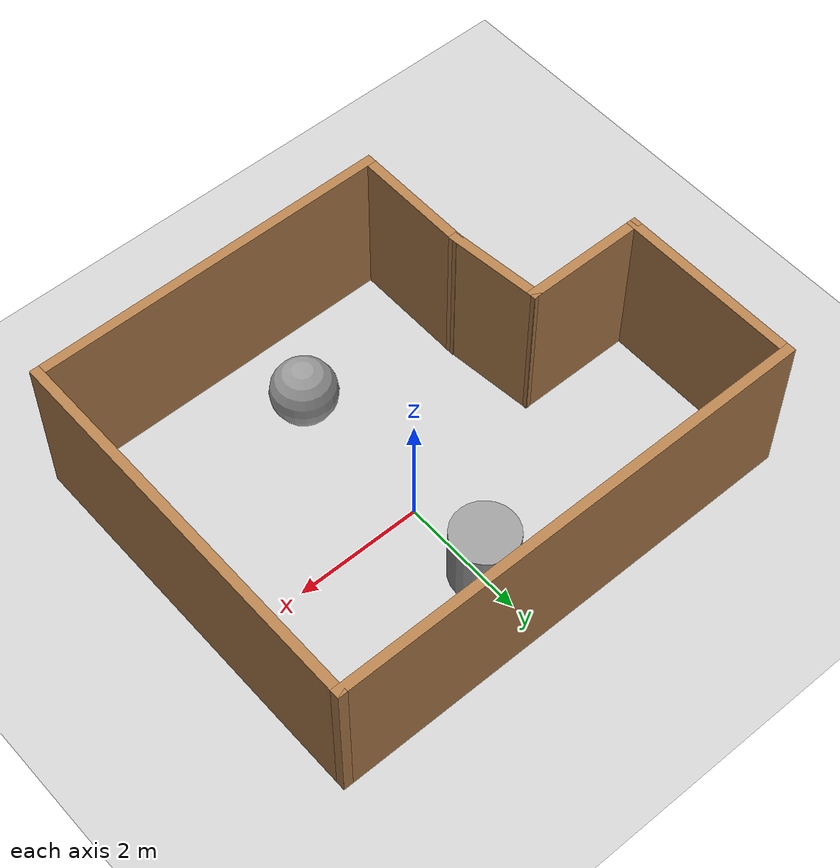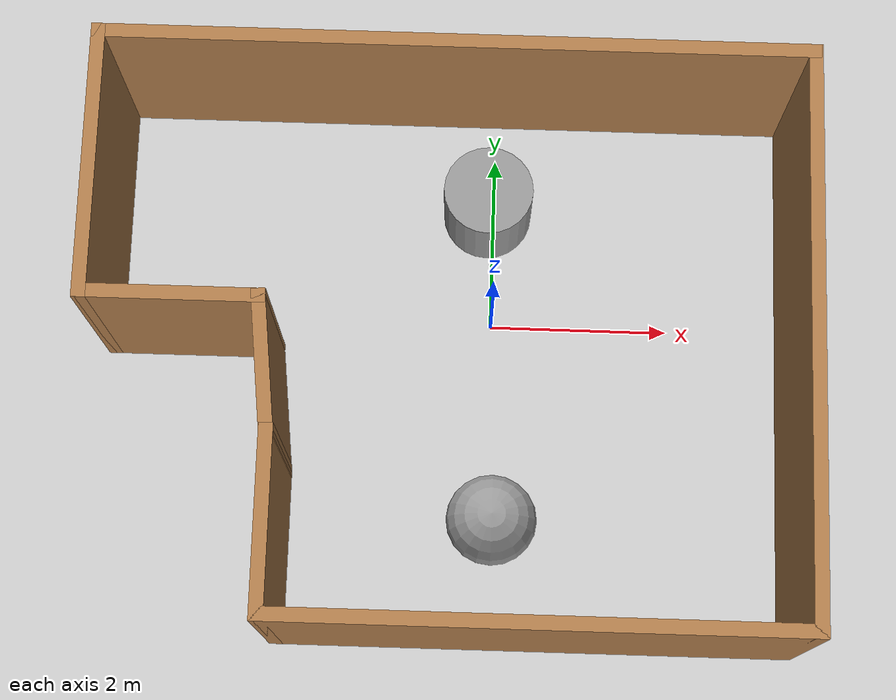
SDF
<sdf version="1.7">
 <world name="default">
  <light name="sun" type="directional">
   <pose>0 0 10 0 -0 0</pose>
   <diffuse>0.8 0.8 0.8 1</diffuse>
   <specular>0.2 0.2 0.2 1</specular>
   <attenuation>
    <range>1000</range>
    <constant>0.9</constant>
    <linear>0.01</linear>
    <quadratic>0.001</quadratic>
   </attenuation>
   <direction>-0.5 0.1 -0.9</direction>
   <spot><inner_angle>0</inner_angle><outer_angle>0</outer_angle><falloff>0</falloff></spot>
  </light>
  <model name="ground_plane">
   <static>1</static>
   <link name="link">
    <collision name="collision">
     <geometry><plane><normal>0 0 1</normal><size>100 100</size></plane></geometry>
     <surface>
      <contact><collide_bitmask>65535</collide_bitmask></contact>
      <friction><ode><mu>100</mu><mu2>50</mu2></ode></friction>
     </surface>
    </collision>
    <visual name="visual">
     <cast_shadows>0</cast_shadows>
     <geometry><plane><normal>0 0 1</normal><size>100 100</size></plane></geometry>
     <material>
      <script><uri>file://media/materials/scripts/gazebo.material</uri><name>Gazebo/Grey</name></script>
     </material>
    </visual>
   </link>
  </model>
  <gravity>0 0 -9.8</gravity>
  <magnetic_field>6e-06 2.3e-05 -4.2e-05</magnetic_field>
  <atmosphere type="adiabatic"/>
  <physics type="ode">
   <max_step_size>0.001</max_step_size>
   <real_time_factor>1</real_time_factor>
   <real_time_update_rate>1000</real_time_update_rate>
  </physics>
  <scene><ambient>0.4 0.4 0.4 1</ambient><background>0.7 0.7 0.7 1</background><shadows>1</shadows></scene>
  <audio><device>default</device></audio>
  <spherical_coordinates>
   <surface_model>EARTH_WGS84</surface_model>
   <latitude_deg>0</latitude_deg>
   <longitude_deg>0</longitude_deg>
   <elevation>0</elevation>
   <heading_deg>0</heading_deg>
  </spherical_coordinates>
  <model name="test1">
   <pose>-0.47 -0.55 0 0 -0 0</pose>
   <link name="Wall_0">
    <collision name="Wall_0_Collision">
     <geometry><box><size>2 0.15 2.5</size></box></geometry>
     <pose>0 0 1.25 0 -0 0</pose>
    </collision>
    <visual name="Wall_0_Visual">
     <pose>0 0 1.25 0 -0 0</pose>
     <geometry><box><size>2 0.15 2.5</size></box></geometry>
     <material>
      <script><uri>file://media/materials/scripts/gazebo.material</uri><name>Gazebo/Wood</name></script>
      <ambient>1 1 1 1</ambient>
     </material>
     <meta><layer>0</layer></meta>
    </visual>
    <pose>-1.8 -2.125 0 0 -0 -1.5708</pose>
   </link>
   <link name="Wall_1">
    <collision name="Wall_1_Collision">
     <geometry><box><size>5.75 0.15 2.5</size></box></geometry>
     <pose>0 0 1.25 0 -0 0</pose>
    </collision>
    <visual name="Wall_1_Visual">
     <pose>0 0 1.25 0 -0 0</pose>
     <geometry><box><size>5.75 0.15 2.5</size></box></geometry>
     <material>
      <script><uri>file://media/materials/scripts/gazebo.material</uri><name>Gazebo/Wood</name></script>
      <ambient>1 1 1 1</ambient>
     </material>
     <meta><layer>0</layer></meta>
    </visual>
    <pose>1 -3.05 0 0 -0 0</pose>
   </link>
   <link name="Wall_2">
    <collision name="Wall_2_Collision">
     <geometry><box><size>6.25 0.15 2.5</size></box></geometry>
     <pose>0 0 1.25 0 -0 0</pose>
    </collision>
    <visual name="Wall_2_Visual">
     <pose>0 0 1.25 0 -0 0</pose>
     <geometry><box><size>6.25 0.15 2.5</size></box></geometry>
     <material>
      <script><uri>file://media/materials/scripts/gazebo.material</uri><name>Gazebo/Wood</name></script>
      <ambient>1 1 1 1</ambient>
     </material>
     <meta><layer>0</layer></meta>
    </visual>
    <pose>3.8 -0 0 0 -0 1.5708</pose>
   </link>
   <link name="Wall_3">
    <collision name="Wall_3_Collision">
     <geometry><box><size>7.75 0.15 2.5</size></box></geometry>
     <pose>0 0 1.25 0 -0 0</pose>
    </collision>
    <visual name="Wall_3_Visual">
     <pose>0 0 1.25 0 -0 0</pose>
     <geometry><box><size>7.75 0.15 2.5</size></box></geometry>
     <material>
      <script><uri>file://media/materials/scripts/gazebo.material</uri><name>Gazebo/Wood</name></script>
      <ambient>1 1 1 1</ambient>
     </material>
     <meta><layer>0</layer></meta>
    </visual>
    <pose>0 3.05 0 0 -0 3.14159</pose>
   </link>
   <link name="Wall_4">
    <collision name="Wall_4_Collision">
     <geometry><box><size>3 0.15 2.5</size></box></geometry>
     <pose>0 0 1.25 0 -0 0</pose>
    </collision>
    <visual name="Wall_4_Visual">
     <pose>0 0 1.25 0 -0 0</pose>
     <geometry><box><size>3 0.15 2.5</size></box></geometry>
     <material>
      <script><uri>file://media/materials/scripts/gazebo.material</uri><name>Gazebo/Wood</name></script>
      <ambient>1 1 1 1</ambient>
     </material>
     <meta><layer>0</layer></meta>
    </visual>
    <pose>-3.8 1.625 0 0 -0 -1.5708</pose>
   </link>
   <link name="Wall_5">
    <collision name="Wall_5_Collision">
     <geometry><box><size>2 0.15 2.5</size></box></geometry>
     <pose>0 0 1.25 0 -0 0</pose>
    </collision>
    <visual name="Wall_5_Visual">
     <pose>0 0 1.25 0 -0 0</pose>
     <geometry><box><size>2 0.15 2.5</size></box></geometry>
     <material>
      <script><uri>file://media/materials/scripts/gazebo.material</uri><name>Gazebo/Wood</name></script>
      <ambient>1 1 1 1</ambient>
     </material>
     <meta><layer>0</layer></meta>
    </visual>
    <pose>-2.875 0.2 0 0 -0 0</pose>
   </link>
   <link name="Wall_6">
    <collision name="Wall_6_Collision">
     <geometry><box><size>1.55801 0.15 2.5</size></box></geometry>
     <pose>0 0 1.25 0 -0 0</pose>
    </collision>
    <visual name="Wall_6_Visual">
     <pose>0 0 1.25 0 -0 0</pose>
     <geometry><box><size>1.55801 0.15 2.5</size></box></geometry>
     <material>
      <script><uri>file://media/materials/scripts/gazebo.material</uri><name>Gazebo/Wood</name></script>
      <ambient>1 1 1 1</ambient>
     </material>
     <meta><layer>0</layer></meta>
    </visual>
    <pose>-1.875 -0.5 0 0 -0 -1.46406</pose>
   </link>
   <static>1</static>
  </model>
  <model name="unit_sphere">
   <pose>0.061578 -2.29582 0.5 0 -0 0</pose>
   <link name="link">
    <inertial>
     <mass>1</mass>
     <inertia><ixx>0.1</ixx><ixy>0</ixy><ixz>0</ixz><iyy>0.1</iyy><iyz>0</iyz><izz>0.1</izz></inertia>
    </inertial>
    <collision name="collision"><geometry><sphere><radius>0.5</radius></sphere></geometry></collision>
    <visual name="visual">
     <geometry><sphere><radius>0.5</radius></sphere></geometry>
     <material>
      <script><name>Gazebo/Grey</name><uri>file://media/materials/scripts/gazebo.material</uri></script>
     </material>
    </visual>
   </link>
  </model>
  <model name="unit_cylinder">
   <pose>-0.072962 1.33783 0.499997 3e-06 4e-06 -0</pose>
   <link name="link">
    <inertial>
     <mass>1</mass>
     <inertia><ixx>0.145833</ixx><ixy>0</ixy><ixz>0</ixz><iyy>0.145833</iyy><iyz>0</iyz><izz>0.125</izz></inertia>
    </inertial>
    <collision name="collision">
     <geometry><cylinder><radius>0.5</radius><length>1</length></cylinder></geometry>
    </collision>
    <visual name="visual">
     <geometry><cylinder><radius>0.5</radius><length>1</length></cylinder></geometry>
     <material>
      <script><name>Gazebo/Grey</name><uri>file://media/materials/scripts/gazebo.material</uri></script>
     </material>
    </visual>
   </link>
  </model>
 </world>
</sdf>
